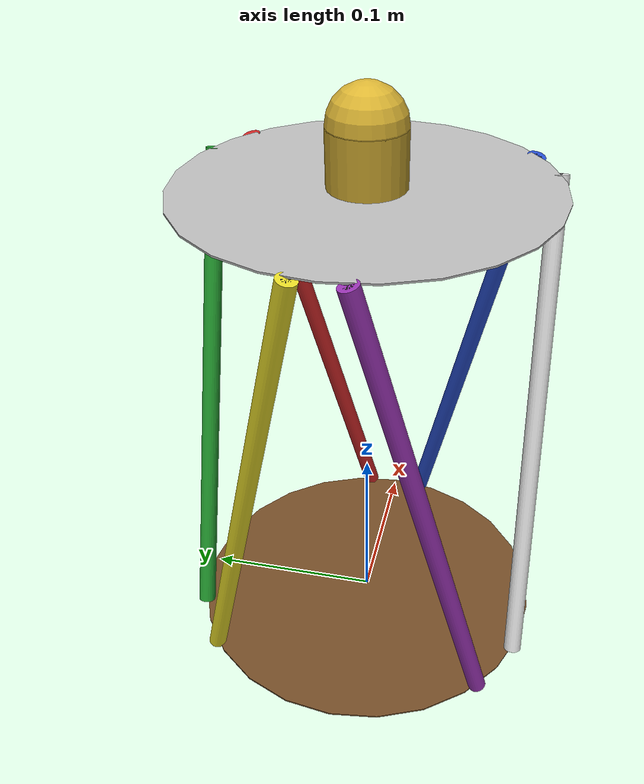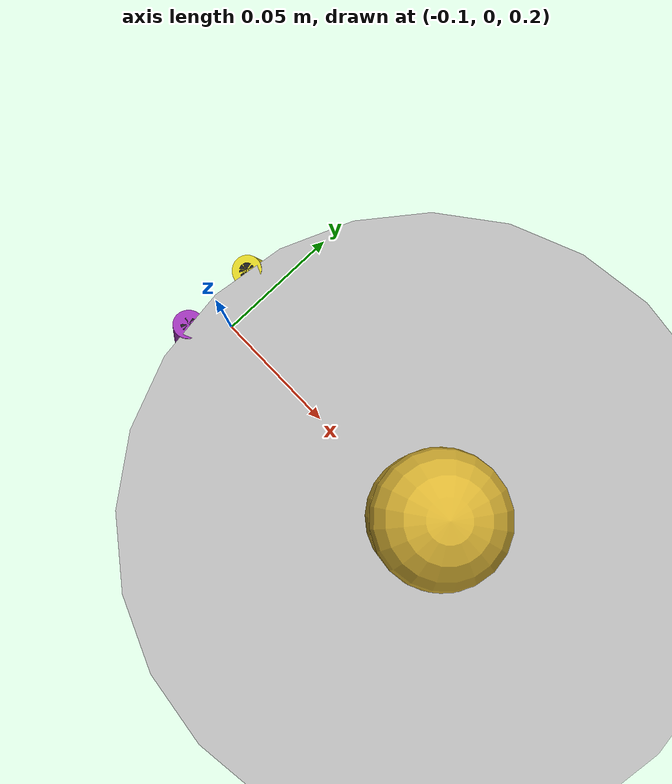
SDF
<?xml version="1.0" ?>
<sdf version="1.5">
	<model name="stewart">
		<plugin name="gz::sim::systems::PosePublisher" filename="gz-sim-pose-publisher-system">
			<publish_link_pose>true</publish_link_pose>
			<use_pose_vector_msg>true</use_pose_vector_msg>
			<static_publisher>false</static_publisher>
			<static_update_frequency>1</static_update_frequency>
		</plugin>
		<plugin name="gz::sim::systems::JointStatePublisher" filename="gz-sim-joint-state-publisher-system"/>
		<joint name="piston1_prismatic_joint" type="prismatic">
			<parent>piston1_cylinder_link</parent>
			<child>piston1_shaft_linkL</child>
			<pose>0 0 0 0 0 0</pose>
			<axis>
				<xyz>0 0 1</xyz>
				<limit>
					<lower>0.0</lower>
					<upper>0.12</upper>
					<velocity>1</velocity>
					<effort>100000</effort>
				</limit>
			</axis>
		</joint>
		<joint name="piston2_prismatic_joint" type="prismatic">
			<parent>piston2_cylinder_link</parent>
			<child>piston2_shaft_linkL</child>
			<pose>0 0 0 0 0 0</pose>
			<axis>
				<xyz>0 0 1</xyz>
				<limit>
					<lower>0.0</lower>
					<upper>0.12</upper>
					<velocity>1</velocity>
					<effort>100000</effort>
				</limit>
			</axis>
		</joint>
		<joint name="piston3_prismatic_joint" type="prismatic">
			<parent>piston3_cylinder_link</parent>
			<child>piston3_shaft_linkL</child>
			<pose>0 0 0 0 0 0</pose>
			<axis>
				<xyz>0 0 1</xyz>
				<limit>
					<lower>0.0</lower>
					<upper>0.12</upper>
					<velocity>1</velocity>
					<effort>100000</effort>
				</limit>
			</axis>
		</joint>
		<joint name="piston4_prismatic_joint" type="prismatic">
			<parent>piston4_cylinder_link</parent>
			<child>piston4_shaft_linkL</child>
			<pose>0 0 0 0 0 0</pose>
			<axis>
				<xyz>0 0 1</xyz>
				<limit>
					<lower>0.0</lower>
					<upper>0.12</upper>
					<velocity>1</velocity>
					<effort>100000</effort>
				</limit>
			</axis>
		</joint>
		<joint name="piston5_prismatic_joint" type="prismatic">
			<parent>piston5_cylinder_link</parent>
			<child>piston5_shaft_linkL</child>
			<pose>0 0 0 0 0 0</pose>
			<axis>
				<xyz>0 0 1</xyz>
				<limit>
					<lower>0.0</lower>
					<upper>0.12</upper>
					<velocity>1</velocity>
					<effort>100000</effort>
				</limit>
			</axis>
		</joint>
		<joint name="piston6_prismatic_joint" type="prismatic">
			<parent>piston6_cylinder_link</parent>
			<child>piston6_shaft_linkL</child>
			<pose>0 0 0 0 0 0</pose>
			<axis>
				<xyz>0 0 1</xyz>
				<limit>
					<lower>0.0</lower>
					<upper>0.12</upper>
					<velocity>1</velocity>
					<effort>100000</effort>
				</limit>
			</axis>
		</joint>
		<joint name="bottom_ball1_joint" type="revolute">
			<parent>base_link</parent>
			<child>bottom_ball1_link</child>
			<pose>0 0 0 0 0 0</pose>
			<axis>
				<xyz>0 1 0</xyz>
				<limit>
					<lower>-0.5235987755982988</lower>
					<upper>0.5235987755982988</upper>
					<velocity>1</velocity>
					<effort/>
				</limit>
			</axis>
		</joint>
		<joint name="bottom_ball2_joint" type="revolute">
			<parent>base_link</parent>
			<child>bottom_ball2_link</child>
			<pose>0 0 0 0 0 0</pose>
			<axis>
				<xyz>0 1 0</xyz>
				<limit>
					<lower>-0.5235987755982988</lower>
					<upper>0.5235987755982988</upper>
					<velocity>1</velocity>
					<effort/>
				</limit>
			</axis>
		</joint>
		<joint name="bottom_ball3_joint" type="revolute">
			<parent>base_link</parent>
			<child>bottom_ball3_link</child>
			<pose>0 0 0 0 0 0</pose>
			<axis>
				<xyz>0 1 0</xyz>
				<limit>
					<lower>-0.5235987755982988</lower>
					<upper>0.5235987755982988</upper>
					<velocity>1</velocity>
					<effort/>
				</limit>
			</axis>
		</joint>
		<joint name="bottom_ball4_joint" type="revolute">
			<parent>base_link</parent>
			<child>bottom_ball4_link</child>
			<pose>0 0 0 0 0 0</pose>
			<axis>
				<xyz>0 1 0</xyz>
				<limit>
					<lower>-0.5235987755982988</lower>
					<upper>0.5235987755982988</upper>
					<velocity>1</velocity>
					<effort/>
				</limit>
			</axis>
		</joint>
		<joint name="bottom_ball5_joint" type="revolute">
			<parent>base_link</parent>
			<child>bottom_ball5_link</child>
			<pose>0 0 0 0 0 0</pose>
			<axis>
				<xyz>0 1 0</xyz>
				<limit>
					<lower>-0.5235987755982988</lower>
					<upper>0.5235987755982988</upper>
					<velocity>1</velocity>
					<effort/>
				</limit>
			</axis>
		</joint>
		<joint name="bottom_ball6_joint" type="revolute">
			<parent>base_link</parent>
			<child>bottom_ball6_link</child>
			<pose>0 0 0 0 0 0</pose>
			<axis>
				<xyz>0 1 0</xyz>
				<limit>
					<lower>-0.5235987755982988</lower>
					<upper>0.5235987755982988</upper>
					<velocity>1</velocity>
					<effort/>
				</limit>
			</axis>
		</joint>
		<joint name="piston1_bottom_pitch_joint" type="ball">
			<parent>bottom_ball1_link</parent>
			<child>piston1_cylinder_link</child>
			<pose>0 0 -0.13930713713011222 0 0 0</pose>
		</joint>
		<joint name="piston2_bottom_pitch_joint" type="ball">
			<parent>bottom_ball2_link</parent>
			<child>piston2_cylinder_link</child>
			<pose>0 0 -0.13930713713011222 0 0 0</pose>
		</joint>
		<joint name="piston3_bottom_pitch_joint" type="ball">
			<parent>bottom_ball3_link</parent>
			<child>piston3_cylinder_link</child>
			<pose>0 0 -0.13930713713011222 0 0 0</pose>
		</joint>
		<joint name="piston4_bottom_pitch_joint" type="ball">
			<parent>bottom_ball4_link</parent>
			<child>piston4_cylinder_link</child>
			<pose>0 0 -0.13930713713011222 0 0 0</pose>
		</joint>
		<joint name="piston5_bottom_pitch_joint" type="ball">
			<parent>bottom_ball5_link</parent>
			<child>piston5_cylinder_link</child>
			<pose>0 0 -0.13930713713011222 0 0 0</pose>
		</joint>
		<joint name="piston6_bottom_pitch_joint" type="ball">
			<parent>bottom_ball6_link</parent>
			<child>piston6_cylinder_link</child>
			<pose>0 0 -0.13930713713011222 0 0 0</pose>
		</joint>
		<joint name="top_ball1_joint" type="revolute">
			<parent>platform_link</parent>
			<child>top_ball1_link</child>
			<pose>0 0 0 0 0 0</pose>
			<axis>
				<xyz>0 1 0</xyz>
				<limit>
					<lower>-0.5235987755982988</lower>
					<upper>0.5235987755982988</upper>
					<velocity>1</velocity>
					<effort/>
				</limit>
			</axis>
			<axis2>
				<xyz>0 0 1</xyz>
				<limit>
					<lower>-0.5235987755982988</lower>
					<upper>0.5235987755982988</upper>
					<velocity>1</velocity>
					<effort/>
				</limit>
			</axis2>
		</joint>
		<joint name="top_ball2_joint" type="revolute">
			<parent>platform_link</parent>
			<child>top_ball2_link</child>
			<pose>0 0 0 0 0 0</pose>
			<axis>
				<xyz>0 1 0</xyz>
				<limit>
					<lower>-0.5235987755982988</lower>
					<upper>0.5235987755982988</upper>
					<velocity>1</velocity>
					<effort/>
				</limit>
			</axis>
			<axis2>
				<xyz>0 0 1</xyz>
				<limit>
					<lower>-0.5235987755982988</lower>
					<upper>0.5235987755982988</upper>
					<velocity>1</velocity>
					<effort/>
				</limit>
			</axis2>
		</joint>
		<joint name="top_ball3_joint" type="revolute">
			<parent>platform_link</parent>
			<child>top_ball3_link</child>
			<pose>0 0 0 0 0 0</pose>
			<axis>
				<xyz>0 1 0</xyz>
				<limit>
					<lower>-0.5235987755982988</lower>
					<upper>0.5235987755982988</upper>
					<velocity>1</velocity>
					<effort/>
				</limit>
			</axis>
			<axis2>
				<xyz>0 0 1</xyz>
				<limit>
					<lower>-0.5235987755982988</lower>
					<upper>0.5235987755982988</upper>
					<velocity>1</velocity>
					<effort/>
				</limit>
			</axis2>
		</joint>
		<joint name="top_ball4_joint" type="revolute">
			<parent>platform_link</parent>
			<child>top_ball4_link</child>
			<pose>0 0 0 0 0 0</pose>
			<axis>
				<xyz>0 1 0</xyz>
				<limit>
					<lower>-0.5235987755982988</lower>
					<upper>0.5235987755982988</upper>
					<velocity>1</velocity>
					<effort/>
				</limit>
			</axis>
			<axis2>
				<xyz>0 0 1</xyz>
				<limit>
					<lower>-0.5235987755982988</lower>
					<upper>0.5235987755982988</upper>
					<velocity>1</velocity>
					<effort/>
				</limit>
			</axis2>
		</joint>
		<joint name="top_ball5_joint" type="revolute">
			<parent>platform_link</parent>
			<child>top_ball5_link</child>
			<pose>0 0 0 0 0 0</pose>
			<axis>
				<xyz>0 1 0</xyz>
				<limit>
					<lower>-0.5235987755982988</lower>
					<upper>0.5235987755982988</upper>
					<velocity>1</velocity>
					<effort/>
				</limit>
			</axis>
			<axis2>
				<xyz>0 0 1</xyz>
				<limit>
					<lower>-0.5235987755982988</lower>
					<upper>0.5235987755982988</upper>
					<velocity>1</velocity>
					<effort/>
				</limit>
			</axis2>
		</joint>
		<joint name="top_ball6_joint" type="revolute">
			<parent>platform_link</parent>
			<child>top_ball6_link</child>
			<pose>0 0 0 0 0 0</pose>
			<axis>
				<xyz>0 1 0</xyz>
				<limit>
					<lower>-0.5235987755982988</lower>
					<upper>0.5235987755982988</upper>
					<velocity>1</velocity>
					<effort/>
				</limit>
			</axis>
			<axis2>
				<xyz>0 0 1</xyz>
				<limit>
					<lower>-0.5235987755982988</lower>
					<upper>0.5235987755982988</upper>
					<velocity>1</velocity>
					<effort/>
				</limit>
			</axis2>
		</joint>
		<joint name="piston1_top_pitch_joint" type="universal">
			<parent>top_ball1_link</parent>
			<child>piston1_shaft_linkU</child>
			<pose>0 0 0.13930713713011222 0 0 0</pose>
			<axis>
				<xyz>1 0 0</xyz>
				<limit>
					<lower>-0.5235987755982988</lower>
					<upper>0.5235987755982988</upper>
					<velocity/>
					<effort/>
				</limit>
			</axis>
		</joint>
		<joint name="piston2_top_pitch_joint" type="universal">
			<parent>top_ball2_link</parent>
			<child>piston2_shaft_linkU</child>
			<pose>0 0 0.13930713713011222 0 0 0</pose>
			<axis>
				<xyz>1 0 0</xyz>
				<limit>
					<lower>-0.5235987755982988</lower>
					<upper>0.5235987755982988</upper>
					<velocity/>
					<effort/>
				</limit>
			</axis>
		</joint>
		<joint name="piston3_top_pitch_joint" type="universal">
			<parent>top_ball3_link</parent>
			<child>piston3_shaft_linkU</child>
			<pose>0 0 0.13930713713011222 0 0 0</pose>
			<axis>
				<xyz>1 0 0</xyz>
				<limit>
					<lower>-0.5235987755982988</lower>
					<upper>0.5235987755982988</upper>
					<velocity/>
					<effort/>
				</limit>
			</axis>
		</joint>
		<joint name="piston4_top_pitch_joint" type="universal">
			<parent>top_ball4_link</parent>
			<child>piston4_shaft_linkU</child>
			<pose>0 0 0.13930713713011222 0 0 0</pose>
			<axis>
				<xyz>1 0 0</xyz>
				<limit>
					<lower>-0.5235987755982988</lower>
					<upper>0.5235987755982988</upper>
					<velocity/>
					<effort/>
				</limit>
			</axis>
		</joint>
		<joint name="piston5_top_pitch_joint" type="universal">
			<parent>top_ball5_link</parent>
			<child>piston5_shaft_linkU</child>
			<pose>0 0 0.13930713713011222 0 0 0</pose>
			<axis>
				<xyz>1 0 0</xyz>
				<limit>
					<lower>-0.5235987755982988</lower>
					<upper>0.5235987755982988</upper>
					<velocity/>
					<effort/>
				</limit>
			</axis>
		</joint>
		<joint name="piston6_top_pitch_joint" type="universal">
			<parent>top_ball6_link</parent>
			<child>piston6_shaft_linkU</child>
			<pose>0 0 0.13930713713011222 0 0 0</pose>
			<axis>
				<xyz>1 0 0</xyz>
				<limit>
					<lower>-0.5235987755982988</lower>
					<upper>0.5235987755982988</upper>
					<velocity/>
					<effort/>
				</limit>
			</axis>
		</joint>
		<link name="base_link">
			<pose>0 0 0.0005 0 0 0</pose>
			<gravity>0</gravity>
			<visual name="base_link_visual">
				<geometry>
					<cylinder>
						<radius>0.103</radius>
						<length>0.001</length>
					</cylinder>
				</geometry>
				<material>
					<script>
						<uri>file://media/materials/scripts/gazebo.material</uri>
						<name>Gazebo/Trunk</name>
					</script>
				</material>
			</visual>
			<collision name="base_link_collision">
				<geometry>
					<cylinder>
						<radius>0.103</radius>
						<length>0.001</length>
					</cylinder>
				</geometry>
			</collision>
		</link>
		<link name="platform_link">
			<pose>0 0 0.2705 0 0 0</pose>
			<gravity>0</gravity>
			<visual name="platform_link_visual">
				<geometry>
					<cylinder>
						<radius>0.0965</radius>
						<length>0.001</length>
					</cylinder>
				</geometry>
				<material>
					<script>
						<uri>file://media/materials/scripts/gazebo.material</uri>
						<name>Gazebo/Footway</name>
					</script>
				</material>
			</visual>
			<collision name="platform_link_collision">
				<geometry>
					<cylinder>
						<radius>0.0965</radius>
						<length>0.001</length>
					</cylinder>
				</geometry>
			</collision>
		</link>
		<link name="platform_cyl">
			<pose>0 0 0.28550000000000003 0 0 0</pose>
			<gravity>0</gravity>
			<visual name="platform_cyl_visual">
				<geometry>
					<cylinder>
						<radius>0.02</radius>
						<length>0.028999999999999998</length>
					</cylinder>
				</geometry>
				<material>
					<script>
						<uri>file://media/materials/scripts/gazebo.material</uri>
						<name>Gazebo/Gold</name>
					</script>
				</material>
			</visual>
			<collision name="platform_cyl_collision">
				<geometry>
					<cylinder>
						<radius>0.02</radius>
						<length>0.028999999999999998</length>
					</cylinder>
				</geometry>
			</collision>
		</link>
		<link name="platform_sphere">
			<pose>0 0 0.3005 0 0 0</pose>
			<gravity>0</gravity>
			<visual name="platform_sphere_visual">
				<geometry>
					<sphere>
						<radius>0.02</radius>
					</sphere>
				</geometry>
				<material>
					<script>
						<uri>file://media/materials/scripts/gazebo.material</uri>
						<name>Gazebo/Gold</name>
					</script>
				</material>
			</visual>
			<collision name="platform_sphere_collision">
				<geometry>
					<sphere>
						<radius>0.02</radius>
					</sphere>
				</geometry>
			</collision>
		</link>
		<joint name="plat_link_to_plat_cyl" type="fixed">
			<parent>platform_link</parent>
			<child>platform_cyl</child>
			<pose>0 0 0 0 0 0</pose>
		</joint>
		<joint name="plat_link_to_plat_sphere" type="fixed">
			<parent>platform_link</parent>
			<child>platform_sphere</child>
			<pose>0 0 0 0 0 0</pose>
		</joint>
		<link name="bottom_ball1_link">
			<pose>0.10143519856025741 0.017885762299693814 0.001 0 0 0.17453292519943286</pose>
			<gravity>0</gravity>
			<visual name="bottom_ball1_link_visual">
				<geometry>
					<sphere>
						<radius>0.0</radius>
					</sphere>
				</geometry>
				<material>
					<script>
						<uri>file://media/materials/scripts/gazebo.material</uri>
						<name>Gazebo/Gold</name>
					</script>
				</material>
			</visual>
		</link>
		<link name="bottom_ball2_link">
			<pose>-0.03522807476254387 0.09678833994094856 0.001 0 0 1.9198621771937625</pose>
			<gravity>0</gravity>
			<visual name="bottom_ball2_link_visual">
				<geometry>
					<sphere>
						<radius>0.0</radius>
					</sphere>
				</geometry>
				<material>
					<script>
						<uri>file://media/materials/scripts/gazebo.material</uri>
						<name>Gazebo/Gold</name>
					</script>
				</material>
			</visual>
		</link>
		<link name="bottom_ball3_link">
			<pose>-0.06620712379771355 0.07890257764125473 0.001 0 0 2.2689280275926285</pose>
			<gravity>0</gravity>
			<visual name="bottom_ball3_link_visual">
				<geometry>
					<sphere>
						<radius>0.0</radius>
					</sphere>
				</geometry>
				<material>
					<script>
						<uri>file://media/materials/scripts/gazebo.material</uri>
						<name>Gazebo/Gold</name>
					</script>
				</material>
			</visual>
		</link>
		<link name="bottom_ball4_link">
			<pose>-0.06620712379771357 -0.07890257764125472 0.001 0 0 -2.268928027592629</pose>
			<gravity>0</gravity>
			<visual name="bottom_ball4_link_visual">
				<geometry>
					<sphere>
						<radius>0.0</radius>
					</sphere>
				</geometry>
				<material>
					<script>
						<uri>file://media/materials/scripts/gazebo.material</uri>
						<name>Gazebo/Gold</name>
					</script>
				</material>
			</visual>
		</link>
		<link name="bottom_ball5_link">
			<pose>-0.03522807476254386 -0.09678833994094856 0.001 0 0 -1.9198621771937623</pose>
			<gravity>0</gravity>
			<visual name="bottom_ball5_link_visual">
				<geometry>
					<sphere>
						<radius>0.0</radius>
					</sphere>
				</geometry>
				<material>
					<script>
						<uri>file://media/materials/scripts/gazebo.material</uri>
						<name>Gazebo/Gold</name>
					</script>
				</material>
			</visual>
		</link>
		<link name="bottom_ball6_link">
			<pose>0.10143519856025741 -0.01788576229969383 0.001 0 0 -0.174532925199433</pose>
			<gravity>0</gravity>
			<visual name="bottom_ball6_link_visual">
				<geometry>
					<sphere>
						<radius>0.0</radius>
					</sphere>
				</geometry>
				<material>
					<script>
						<uri>file://media/materials/scripts/gazebo.material</uri>
						<name>Gazebo/Gold</name>
					</script>
				</material>
			</visual>
		</link>
		<link name="top_ball1_link">
			<pose>0.05874547789934154 0.07655859733810419 0.2695 0 0 0.916297857297023</pose>
			<gravity>0</gravity>
			<visual name="top_ball1_link_visual">
				<geometry>
					<sphere>
						<radius>0.0</radius>
					</sphere>
				</geometry>
				<material>
					<script>
						<uri>file://media/materials/scripts/gazebo.material</uri>
						<name>Gazebo/White</name>
					</script>
				</material>
			</visual>
		</link>
		<link name="top_ball2_link">
			<pose>0.03692895122323117 0.08915437488733917 0.2695 0 0 1.1780972450961724</pose>
			<gravity>0</gravity>
			<visual name="top_ball2_link_visual">
				<geometry>
					<sphere>
						<radius>0.0</radius>
					</sphere>
				</geometry>
				<material>
					<script>
						<uri>file://media/materials/scripts/gazebo.material</uri>
						<name>Gazebo/White</name>
					</script>
				</material>
			</visual>
		</link>
		<link name="top_ball3_link">
			<pose>-0.09567442912257271 0.012595777549234978 0.2695 0 0 3.0106929596902186</pose>
			<gravity>0</gravity>
			<visual name="top_ball3_link_visual">
				<geometry>
					<sphere>
						<radius>0.0</radius>
					</sphere>
				</geometry>
				<material>
					<script>
						<uri>file://media/materials/scripts/gazebo.material</uri>
						<name>Gazebo/White</name>
					</script>
				</material>
			</visual>
		</link>
		<link name="top_ball4_link">
			<pose>-0.09567442912257271 -0.012595777549234997 0.2695 0 0 -3.0106929596902186</pose>
			<gravity>0</gravity>
			<visual name="top_ball4_link_visual">
				<geometry>
					<sphere>
						<radius>0.0</radius>
					</sphere>
				</geometry>
				<material>
					<script>
						<uri>file://media/materials/scripts/gazebo.material</uri>
						<name>Gazebo/White</name>
					</script>
				</material>
			</visual>
		</link>
		<link name="top_ball5_link">
			<pose>0.036928951223231185 -0.08915437488733916 0.2695 0 0 -1.1780972450961722</pose>
			<gravity>0</gravity>
			<visual name="top_ball5_link_visual">
				<geometry>
					<sphere>
						<radius>0.0</radius>
					</sphere>
				</geometry>
				<material>
					<script>
						<uri>file://media/materials/scripts/gazebo.material</uri>
						<name>Gazebo/White</name>
					</script>
				</material>
			</visual>
		</link>
		<link name="top_ball6_link">
			<pose>0.058745477899341536 -0.07655859733810419 0.2695 0 0 -0.9162978572970231</pose>
			<gravity>0</gravity>
			<visual name="top_ball6_link_visual">
				<geometry>
					<sphere>
						<radius>0.0</radius>
					</sphere>
				</geometry>
				<material>
					<script>
						<uri>file://media/materials/scripts/gazebo.material</uri>
						<name>Gazebo/White</name>
					</script>
				</material>
			</visual>
		</link>
		<link name="piston1_cylinder_link">
			<pose>0.08009033822979948 0.047222179818899 0.1355 0 0.26346832695257616 2.199799567347474</pose>
			<gravity>0</gravity>
			<visual name="piston1_cylinder_link_visual">
				<geometry>
					<cylinder>
						<radius>0.005</radius>
						<length>0.27861427426022445</length>
					</cylinder>
				</geometry>
				<material>
					<script>
						<uri>file://media/materials/scripts/gazebo.material</uri>
						<name>Gazebo/Red</name>
					</script>
				</material>
			</visual>
		</link>
		<link name="piston2_cylinder_link">
			<pose>0.0008504382303436489 0.09297135741414386 0.1355 0 0.26346832695257616 -0.10540446495427867</pose>
			<gravity>0</gravity>
			<visual name="piston2_cylinder_link_visual">
				<geometry>
					<cylinder>
						<radius>0.005</radius>
						<length>0.27861427426022445</length>
					</cylinder>
				</geometry>
				<material>
					<script>
						<uri>file://media/materials/scripts/gazebo.material</uri>
						<name>Gazebo/Green</name>
					</script>
				</material>
			</visual>
		</link>
		<link name="piston3_cylinder_link">
			<pose>-0.08094077646014314 0.045749177595244855 0.1355 0 0.26346832695257616 -1.9889906374389168</pose>
			<gravity>0</gravity>
			<visual name="piston3_cylinder_link_visual">
				<geometry>
					<cylinder>
						<radius>0.005</radius>
						<length>0.27861427426022445</length>
					</cylinder>
				</geometry>
				<material>
					<script>
						<uri>file://media/materials/scripts/gazebo.material</uri>
						<name>Gazebo/Yellow</name>
					</script>
				</material>
			</visual>
		</link>
		<link name="piston4_cylinder_link">
			<pose>-0.08094077646014314 -0.045749177595244855 0.1355 0 0.26346832695257616 1.9889906374389168</pose>
			<gravity>0</gravity>
			<visual name="piston4_cylinder_link_visual">
				<geometry>
					<cylinder>
						<radius>0.005</radius>
						<length>0.27861427426022445</length>
					</cylinder>
				</geometry>
				<material>
					<script>
						<uri>file://media/materials/scripts/gazebo.material</uri>
						<name>Gazebo/Purple</name>
					</script>
				</material>
			</visual>
		</link>
		<link name="piston5_cylinder_link">
			<pose>0.0008504382303436628 -0.09297135741414386 0.1355 0 0.26346832695257616 0.10540446495427887</pose>
			<gravity>0</gravity>
			<visual name="piston5_cylinder_link_visual">
				<geometry>
					<cylinder>
						<radius>0.005</radius>
						<length>0.27861427426022445</length>
					</cylinder>
				</geometry>
				<material>
					<script>
						<uri>file://media/materials/scripts/gazebo.material</uri>
						<name>Gazebo/White</name>
					</script>
				</material>
			</visual>
		</link>
		<link name="piston6_cylinder_link">
			<pose>0.08009033822979947 -0.04722217981889901 0.1355 0 0.26346832695257616 -2.199799567347474</pose>
			<gravity>0</gravity>
			<visual name="piston6_cylinder_link_visual">
				<geometry>
					<cylinder>
						<radius>0.005</radius>
						<length>0.27861427426022445</length>
					</cylinder>
				</geometry>
				<material>
					<script>
						<uri>file://media/materials/scripts/gazebo.material</uri>
						<name>Gazebo/Blue</name>
					</script>
				</material>
			</visual>
		</link>
		<link name="piston1_shaft_linkU">
			<pose>0.08009033822979948 0.047222179818899 0.1355 0 0.26346832695257616 2.199799567347474</pose>
			<gravity>0</gravity>
			<visual name="piston1_shaft_linkU_visual">
				<geometry>
					<cylinder>
						<radius>0.0025</radius>
						<length>0.27861427426022445</length>
					</cylinder>
				</geometry>
				<material>
					<script>
						<uri>file://media/materials/scripts/gazebo.material</uri>
						<name>Gazebo/Black</name>
					</script>
				</material>
			</visual>
		</link>
		<link name="piston2_shaft_linkU">
			<pose>0.0008504382303436489 0.09297135741414386 0.1355 0 0.26346832695257616 -0.10540446495427867</pose>
			<gravity>0</gravity>
			<visual name="piston2_shaft_linkU_visual">
				<geometry>
					<cylinder>
						<radius>0.0025</radius>
						<length>0.27861427426022445</length>
					</cylinder>
				</geometry>
				<material>
					<script>
						<uri>file://media/materials/scripts/gazebo.material</uri>
						<name>Gazebo/Black</name>
					</script>
				</material>
			</visual>
		</link>
		<link name="piston3_shaft_linkU">
			<pose>-0.08094077646014314 0.045749177595244855 0.1355 0 0.26346832695257616 -1.9889906374389168</pose>
			<gravity>0</gravity>
			<visual name="piston3_shaft_linkU_visual">
				<geometry>
					<cylinder>
						<radius>0.0025</radius>
						<length>0.27861427426022445</length>
					</cylinder>
				</geometry>
				<material>
					<script>
						<uri>file://media/materials/scripts/gazebo.material</uri>
						<name>Gazebo/Black</name>
					</script>
				</material>
			</visual>
		</link>
		<link name="piston4_shaft_linkU">
			<pose>-0.08094077646014314 -0.045749177595244855 0.1355 0 0.26346832695257616 1.9889906374389168</pose>
			<gravity>0</gravity>
			<visual name="piston4_shaft_linkU_visual">
				<geometry>
					<cylinder>
						<radius>0.0025</radius>
						<length>0.27861427426022445</length>
					</cylinder>
				</geometry>
				<material>
					<script>
						<uri>file://media/materials/scripts/gazebo.material</uri>
						<name>Gazebo/Black</name>
					</script>
				</material>
			</visual>
		</link>
		<link name="piston5_shaft_linkU">
			<pose>0.0008504382303436628 -0.09297135741414386 0.1355 0 0.26346832695257616 0.10540446495427887</pose>
			<gravity>0</gravity>
			<visual name="piston5_shaft_linkU_visual">
				<geometry>
					<cylinder>
						<radius>0.0025</radius>
						<length>0.27861427426022445</length>
					</cylinder>
				</geometry>
				<material>
					<script>
						<uri>file://media/materials/scripts/gazebo.material</uri>
						<name>Gazebo/Black</name>
					</script>
				</material>
			</visual>
		</link>
		<link name="piston6_shaft_linkU">
			<pose>0.08009033822979947 -0.04722217981889901 0.1355 0 0.26346832695257616 -2.199799567347474</pose>
			<gravity>0</gravity>
			<visual name="piston6_shaft_linkU_visual">
				<geometry>
					<cylinder>
						<radius>0.0025</radius>
						<length>0.27861427426022445</length>
					</cylinder>
				</geometry>
				<material>
					<script>
						<uri>file://media/materials/scripts/gazebo.material</uri>
						<name>Gazebo/Black</name>
					</script>
				</material>
			</visual>
		</link>
		<link name="piston1_shaft_linkL">
			<pose>0.08009033822979948 0.047222179818899 0.1355 0 0.26346832695257616 2.199799567347474</pose>
			<gravity>0</gravity>
			<visual name="piston1_shaft_linkL_visual">
				<geometry>
					<cylinder>
						<radius>0.0025</radius>
						<length>0.27861427426022445</length>
					</cylinder>
				</geometry>
				<material>
					<script>
						<uri>file://media/materials/scripts/gazebo.material</uri>
						<name>Gazebo/Black</name>
					</script>
				</material>
			</visual>
		</link>
		<link name="piston2_shaft_linkL">
			<pose>0.0008504382303436489 0.09297135741414386 0.1355 0 0.26346832695257616 -0.10540446495427867</pose>
			<gravity>0</gravity>
			<visual name="piston2_shaft_linkL_visual">
				<geometry>
					<cylinder>
						<radius>0.0025</radius>
						<length>0.27861427426022445</length>
					</cylinder>
				</geometry>
				<material>
					<script>
						<uri>file://media/materials/scripts/gazebo.material</uri>
						<name>Gazebo/Black</name>
					</script>
				</material>
			</visual>
		</link>
		<link name="piston3_shaft_linkL">
			<pose>-0.08094077646014314 0.045749177595244855 0.1355 0 0.26346832695257616 -1.9889906374389168</pose>
			<gravity>0</gravity>
			<visual name="piston3_shaft_linkL_visual">
				<geometry>
					<cylinder>
						<radius>0.0025</radius>
						<length>0.27861427426022445</length>
					</cylinder>
				</geometry>
				<material>
					<script>
						<uri>file://media/materials/scripts/gazebo.material</uri>
						<name>Gazebo/Black</name>
					</script>
				</material>
			</visual>
		</link>
		<link name="piston4_shaft_linkL">
			<pose>-0.08094077646014314 -0.045749177595244855 0.1355 0 0.26346832695257616 1.9889906374389168</pose>
			<gravity>0</gravity>
			<visual name="piston4_shaft_linkL_visual">
				<geometry>
					<cylinder>
						<radius>0.0025</radius>
						<length>0.27861427426022445</length>
					</cylinder>
				</geometry>
				<material>
					<script>
						<uri>file://media/materials/scripts/gazebo.material</uri>
						<name>Gazebo/Black</name>
					</script>
				</material>
			</visual>
		</link>
		<link name="piston5_shaft_linkL">
			<pose>0.0008504382303436628 -0.09297135741414386 0.1355 0 0.26346832695257616 0.10540446495427887</pose>
			<gravity>0</gravity>
			<visual name="piston5_shaft_linkL_visual">
				<geometry>
					<cylinder>
						<radius>0.0025</radius>
						<length>0.27861427426022445</length>
					</cylinder>
				</geometry>
				<material>
					<script>
						<uri>file://media/materials/scripts/gazebo.material</uri>
						<name>Gazebo/Black</name>
					</script>
				</material>
			</visual>
		</link>
		<link name="piston6_shaft_linkL">
			<pose>0.08009033822979947 -0.04722217981889901 0.1355 0 0.26346832695257616 -2.199799567347474</pose>
			<gravity>0</gravity>
			<visual name="piston6_shaft_linkL_visual">
				<geometry>
					<cylinder>
						<radius>0.0025</radius>
						<length>0.27861427426022445</length>
					</cylinder>
				</geometry>
				<material>
					<script>
						<uri>file://media/materials/scripts/gazebo.material</uri>
						<name>Gazebo/Black</name>
					</script>
				</material>
			</visual>
		</link>
		<plugin filename="libgz-sim-detachable-joint-system.so" name="gz::sim::systems::DetachableJoint">
			<parent_link>piston1_shaft_linkL</parent_link>
			<child_link>piston1_shaft_linkU</child_link>
			<child_model>stewart</child_model>
		</plugin>
		<plugin filename="libgz-sim-detachable-joint-system.so" name="gz::sim::systems::DetachableJoint">
			<parent_link>piston2_shaft_linkL</parent_link>
			<child_link>piston2_shaft_linkU</child_link>
			<child_model>stewart</child_model>
		</plugin>
		<plugin filename="libgz-sim-detachable-joint-system.so" name="gz::sim::systems::DetachableJoint">
			<parent_link>piston3_shaft_linkL</parent_link>
			<child_link>piston3_shaft_linkU</child_link>
			<child_model>stewart</child_model>
		</plugin>
		<plugin filename="libgz-sim-detachable-joint-system.so" name="gz::sim::systems::DetachableJoint">
			<parent_link>piston4_shaft_linkL</parent_link>
			<child_link>piston4_shaft_linkU</child_link>
			<child_model>stewart</child_model>
		</plugin>
		<plugin filename="libgz-sim-detachable-joint-system.so" name="gz::sim::systems::DetachableJoint">
			<parent_link>piston5_shaft_linkL</parent_link>
			<child_link>piston5_shaft_linkU</child_link>
			<child_model>stewart</child_model>
		</plugin>
		<plugin filename="libgz-sim-detachable-joint-system.so" name="gz::sim::systems::DetachableJoint">
			<parent_link>piston6_shaft_linkL</parent_link>
			<child_link>piston6_shaft_linkU</child_link>
			<child_model>stewart</child_model>
		</plugin>
		<plugin filename="gz-sim-joint-position-controller-system" name="gz::sim::systems::JointPositionController">
			<joint_name>piston1_prismatic_joint</joint_name>
			<p_gain>50000</p_gain>
			<i_gain>10000</i_gain>
			<d_gain>1000</d_gain>
		</plugin>
		<plugin filename="gz-sim-joint-position-controller-system" name="gz::sim::systems::JointPositionController">
			<joint_name>piston2_prismatic_joint</joint_name>
			<p_gain>50000</p_gain>
			<i_gain>10000</i_gain>
			<d_gain>1000</d_gain>
		</plugin>
		<plugin filename="gz-sim-joint-position-controller-system" name="gz::sim::systems::JointPositionController">
			<joint_name>piston3_prismatic_joint</joint_name>
			<p_gain>50000</p_gain>
			<i_gain>10000</i_gain>
			<d_gain>1000</d_gain>
		</plugin>
		<plugin filename="gz-sim-joint-position-controller-system" name="gz::sim::systems::JointPositionController">
			<joint_name>piston4_prismatic_joint</joint_name>
			<p_gain>50000</p_gain>
			<i_gain>10000</i_gain>
			<d_gain>1000</d_gain>
		</plugin>
		<plugin filename="gz-sim-joint-position-controller-system" name="gz::sim::systems::JointPositionController">
			<joint_name>piston5_prismatic_joint</joint_name>
			<p_gain>50000</p_gain>
			<i_gain>10000</i_gain>
			<d_gain>1000</d_gain>
		</plugin>
		<plugin filename="gz-sim-joint-position-controller-system" name="gz::sim::systems::JointPositionController">
			<joint_name>piston6_prismatic_joint</joint_name>
			<p_gain>50000</p_gain>
			<i_gain>10000</i_gain>
			<d_gain>1000</d_gain>
		</plugin>
	</model>
</sdf>
